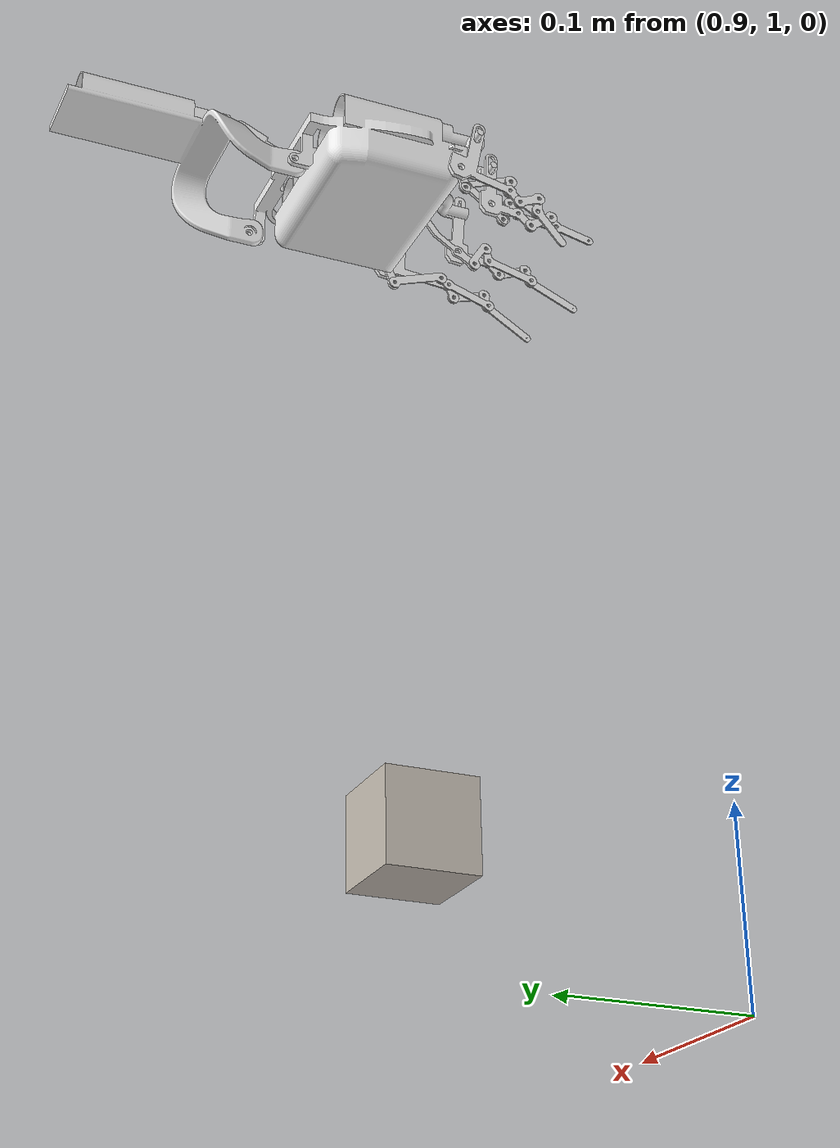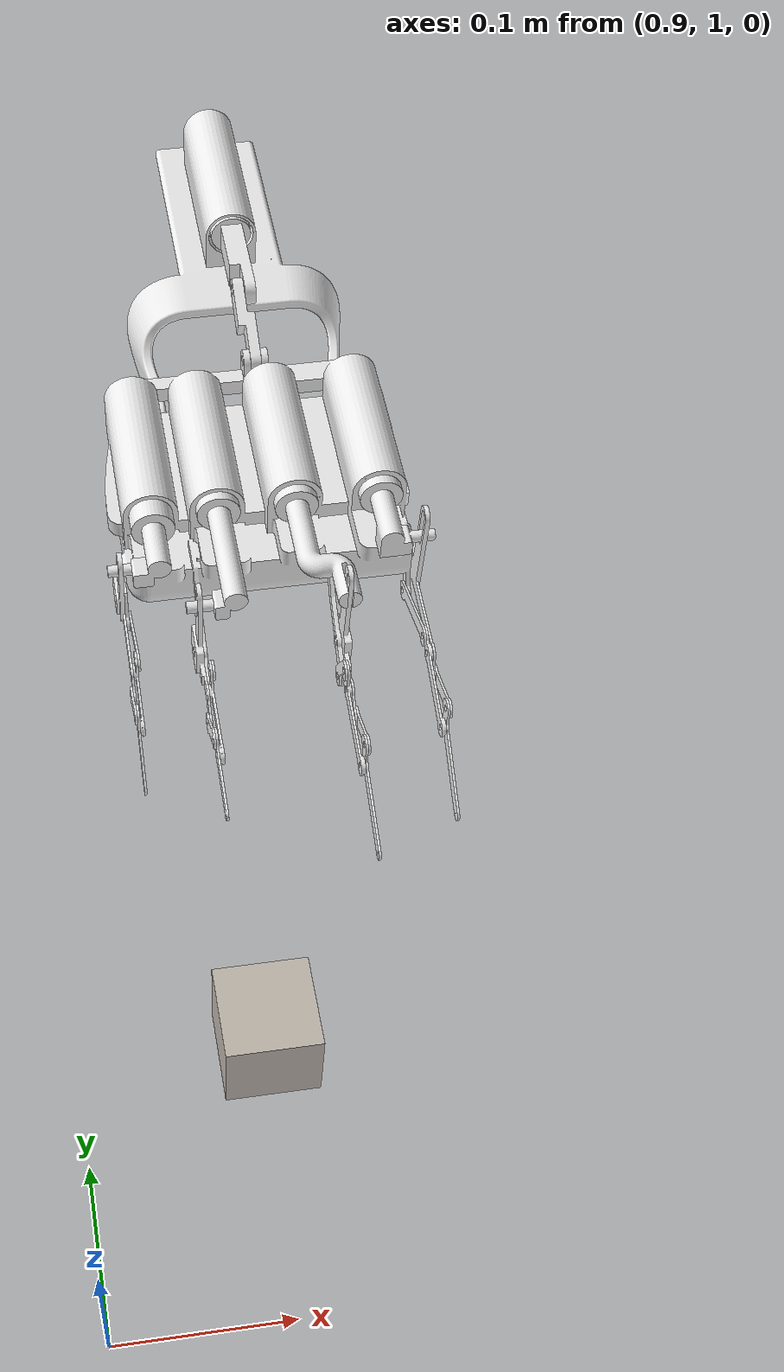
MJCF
<?xml version="1.0" encoding="utf-8"?>
<mujoco>
    <compiler angle="radian" coordinate="local" meshdir="../stls" texturedir="../textures"></compiler>
    <option timestep="0.001" iterations="20" apirate="200">
        <flag warmstart="enable"></flag>
    </option>

    <include file="shared.xml"></include>

    <asset>
        <include file="shared_asset.xml"></include>

        <texture name="texture:object" file="block.png" gridsize="3 4" gridlayout=".U..LFRB.D.."></texture>
        <texture name="texture:hidden" file="block_hidden.png" gridsize="3 4" gridlayout=".U..LFRB.D.."></texture>

        <material name="material:object" texture="texture:object" specular="1" shininess="0.3" reflectance="0"></material>
        <material name="material:hidden" texture="texture:hidden" specular="1" shininess="0.3" reflectance="0"></material>
        <material name="material:target" texture="texture:object" specular="1" shininess="0.3" reflectance="0" rgba="1 1 1 0.5"></material>
    </asset>

    <worldbody>
        <geom name="floor0" pos="1 1 0" size="1 1 1" type="plane" condim="3" material="floor_mat"></geom>
        <body name="floor0" pos="1 1 0"></body>

        <include file="glove.xml"></include>

        <body name="object" pos="1 1.12 0.1">
            <geom name="object" type="box" size="0.025 0.025 0.025" material="material:object" condim="4" density="567"></geom>
            <geom name="object_hidden" type="box" size="0.024 0.024 0.024" material="material:hidden" condim="4" contype="0" conaffinity="0" mass="0"></geom>
            <site name="object:center" pos="0 0 0" rgba="1 0 0 0" size="0.01 0.01 0.01"></site>
            <joint name="object:joint" type="free" damping="0.01"></joint>
        </body>
        <body name="target" pos="1 1.12 0.1">
            <geom name="target" type="box" size="0.025 0.025 0.025" material="material:target" condim="4" group="2" contype="0" conaffinity="0"></geom>
            <site name="target:center" pos="0 0 0" rgba="1 0 0 0" size="0.01 0.01 0.01"></site>
            <joint name="target:joint" type="free" damping="0.01"></joint>
        </body>

        <light directional="true" ambient="0.2 0.2 0.2" diffuse="0.8 0.8 0.8" specular="0.3 0.3 0.3" castshadow="false" pos="0 1 4" dir="0 0 -1" name="light0"></light>
    </worldbody>
</mujoco>

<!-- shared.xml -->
<mujoco>
    <size njmax="500" nconmax="100" nuser_jnt="1" nuser_site="1" nuser_tendon="1" nuser_sensor="1" nuser_actuator="16" nstack="600000"></size>

    <visual>
        <map fogstart="3" fogend="5" force="0.1"></map>
        <quality shadowsize="4096"></quality>
    </visual>

    <default>
        <default class="glove:asset_class">
            <geom friction="1 0.005 0.001" condim="3" margin="0.0005" contype="1" conaffinity="1"></geom>
            <joint limited="true" damping="0.1" armature="0.001" margin="0.01" frictionloss="0.001"></joint>
            <site size="0.005" rgba="0.4 0.9 0.4 1"></site>
            <general ctrllimited="true" forcelimited="false"></general>
        </default>
        <default class="glove:Touch">
            <site type="box" size="0.013 0.008 0.008" rgba="0.8 0.8 0.8 0.15" group="4"></site>
        </default>
        <default class="glove:Hand">
            <geom material="glove:MatColl" contype="1" conaffinity="0" group="4"></geom>
        </default>
        <default class="glove:Visual">
            <geom material="glove:MatViz" contype="0" conaffinity="0" group="1" type="mesh"></geom>
        </default>
        <default class="glove:free">
            <joint type="free" damping="0" armature="0" limited="false"></joint>
        </default>
    </default>

    <equality>
        <connect name="wrist" solimp="0.9 0.95 0.001 0.5 2" solref="0.004 1" body1="glove:wrist_base" body2="glove:palm" anchor="0.0325 -0.0422 0.04854"></connect>
        <connect name="index_proximal" solimp="0.9 0.95 0.001 0.5 2" solref="0.004 1" body1="glove:index_proximal_1" body2="glove:palm" anchor="0 0 0"></connect><!--solref="0 0.01"-->
        <connect name="index_distal" solimp="0.9 0.95 0.001 0.5 2" solref="0.004 1" body1="glove:index_middle_2" body2="glove:index_distal" anchor="0.03291 -0.00104 -0.00078"></connect><!--solref="0 0.01"-->
        <connect name="index_middle" solimp="0.9 0.95 0.001 0.5 2" solref="0.004 1" body1="glove:index_proximal_1" body2="glove:index_middle_2" anchor="0.04 0 0.00258"></connect><!--solref="0 0.01"-->
        <connect name="middle_proximal" solimp="0.9 0.95 0.001" solref="0.004 1" body1="glove:middle_proximal_1" body2="glove:palm" anchor="0 0 0"></connect><!--solref="0 0.01"-->
        <connect name="middle_distal" solimp="0.9 0.95 0.001" solref="0.004 1" body1="glove:middle_middle_2" body2="glove:middle_distal" anchor="0.03184 -0.00697 -0.00078"></connect><!--solref="0 0.01"-->
        <connect name="middle_middle" solimp="0.9 0.95 0.001 0.5 2" solref="0.004 1" body1="glove:middle_proximal_1" body2="glove:middle_middle_2" anchor="0.02 0 0"></connect><!--solref="0 0.01"-->
        <connect name="ring_proximal" solimp="0.9 0.95 0.001" solref="0.004 1" body1="glove:ring_proximal_1" body2="glove:palm" anchor="0 0 0"></connect><!--solref="0 0.01"-->
        <connect name="ring_distal" solimp="0.9 0.95 0.001" solref="0.004 1" body1="glove:ring_middle_2" body2="glove:ring_distal" anchor="0.0289 -0.00636 0.0016"></connect><!--solref="0 0.01"-->
        <connect name="ring_middle" solimp="0.9 0.95 0.001 0.5 2" solref="0.004 1" body1="glove:ring_proximal_1" body2="glove:ring_middle_2" anchor="0.0175 0 0"></connect><!--solref="0 0.01"-->
        <connect name="little_proximal" solimp="0.9 0.95 0.001" solref="0.004 1" body1="glove:little_proximal_1" body2="glove:palm" anchor="0 0 0"></connect><!--solref="0 0.01"-->
        <connect name="little_middle" solimp="0.9 0.95 0.001" solref="0.004 1" body1="glove:little_proximal_1" body2="glove:little_middle_2" anchor="0.031 0 0"></connect><!--solref="0 0.01"-->
        <connect name="little_distal" solimp="0.9 0.95 0.001" solref="0.004 1" body1="glove:little_middle_2" body2="glove:little_distal" anchor="0.02144 -0.00722 0.0016"></connect><!--solref="0 0.01"-->
    </equality>

    <actuator>
        <position name="glove:A_WRJ" class="glove:asset_class" user="2038" joint="glove:SEA_output_shaft_wrist_slide" ctrlrange="0 0.025" kp="2e8"></position>
        <position name="glove:A_IFJ" class="glove:asset_class" user="2036" joint="glove:SEA_output_shaft_index_slide" ctrlrange="0 0.019" kp="1e7"></position>
        <position name="glove:A_MFJ" class="glove:asset_class" user="2004" joint="glove:SEA_output_shaft_middle_slide" ctrlrange="0 0.019" kp="1e7"></position>
        <position name="glove:A_RFJ" class="glove:asset_class" user="2002" joint="glove:SEA_output_shaft_ring_slide" ctrlrange="0 0.019" kp="1e7"></position>
        <position name="glove:A_LFJ" class="glove:asset_class" user="2000" joint="glove:SEA_output_shaft_little_slide" ctrlrange="0 0.010" kp="1e7"></position>
    </actuator>
</mujoco>

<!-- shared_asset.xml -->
<mujoco>
    <texture type="skybox" builtin="gradient" rgb1="0.44 0.85 0.56" rgb2="0.46 0.87 0.58" width="32" height="32"></texture>

    <texture name="glove:texplane" type="2d" builtin="checker" rgb1="0.2 0.3 0.4" rgb2="0.1 0.15 0.2" width="512" height="512"></texture>
    <texture name="glove:texgeom" type="cube" builtin="flat" mark="cross" width="127" height="127" rgb1="0.3 0.6 0.5" rgb2="0.3 0.6 0.5" markrgb="0 0 0" random="0.01"></texture>

    <material name="glove:MatGnd" reflectance="0.5" texture="glove:texplane" texrepeat="1 1" texuniform="true"></material>
    <material name="glove:MatColl" specular="1" shininess="0.3" reflectance="0.5" rgba="0.4 0.5 0.6 1"></material>
    <material name="glove:MatViz" specular="0.75" shininess="0.1" reflectance="0.5" rgba="0.93 0.93 0.93 1"></material>
    <material name="glove:object" texture="glove:texgeom" texuniform="false"></material>
    <material name="floor_mat" specular="0" shininess="0.5" reflectance="0" rgba="0.2 0.2 0.2 0"></material>
    <!-- wrist -->
    <mesh name="glove:wrist_base" file="./wrist/wrist_base.STL"></mesh>
    <mesh name="glove:SEA_output_shaft_wrist" file="./wrist/SEA_output_shaft_wrist.STL"></mesh>
    <mesh name="glove:connect" file="./wrist/connect.STL"></mesh><!--scale="0.001 0.001 0.001"-->
    <!-- palm -->
    <mesh name="glove:palm" file="./palm/palm.STL"></mesh>
    <!-- index -->
    <mesh name="glove:SEA_output_shaft_index" file="./index/SEA_output_shaft_index.STL"></mesh>
    <mesh name="glove:index_proximal_1" file="./index/index_proximal_1.STL"></mesh>
    <mesh name="glove:index_middle_1" file="./index/index_middle_1.STL"></mesh>
    <mesh name="glove:index_distal" file="./index/index_distal.STL"></mesh>
    <mesh name="glove:index_proximal_2" file="./index/index_proximal_2.STL"></mesh>
    <mesh name="glove:index_middle_2" file="./index/index_middle_2.STL"></mesh>
    <!-- middle -->
    <mesh name="glove:SEA_output_shaft_middle" file="./middle/SEA_output_shaft_middle.STL"></mesh>
    <mesh name="glove:middle_proximal_1" file="./middle/middle_proximal_1.STL"></mesh>
    <mesh name="glove:middle_middle_1" file="./middle/middle_middle_1.STL"></mesh>
    <mesh name="glove:middle_distal" file="./middle/middle_distal.STL"></mesh>
    <mesh name="glove:middle_proximal_2" file="./middle/middle_proximal_2.STL"></mesh>
    <mesh name="glove:middle_middle_2" file="./middle/middle_middle_2.STL"></mesh>
    <!-- ring -->
    <mesh name="glove:SEA_output_shaft_ring"  file="./ring/SEA_output_shaft_ring.STL"></mesh>
    <mesh name="glove:ring_proximal_1" file="./ring/ring_proximal_1.STL"></mesh>
    <mesh name="glove:ring_middle_1" file="./ring/ring_middle_1.STL"></mesh>
    <mesh name="glove:ring_distal" file="./ring/ring_distal.STL"></mesh>
    <mesh name="glove:ring_proximal_2" file="./ring/ring_proximal_2.STL"></mesh>
    <mesh name="glove:ring_middle_2" file="./ring/ring_middle_2.STL"></mesh>
    <!-- little -->
    <mesh name="glove:SEA_output_shaft_little"  file="./little/SEA_output_shaft_little.STL"></mesh>
    <mesh name="glove:little_proximal_1" file="./little/little_proximal_1.STL"></mesh>
    <mesh name="glove:little_middle_1" file="./little/little_middle_1.STL"></mesh>
    <mesh name="glove:little_distal" file="./little/little_distal.STL"></mesh>
    <mesh name="glove:little_proximal_2" file="./little/little_proximal_2.STL"></mesh>
    <mesh name="glove:little_middle_2" file="./little/little_middle_2.STL"></mesh>
</mujoco>

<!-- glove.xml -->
<mujoco>
    <body childclass="glove:asset_class" name="glove:wrist_base" pos="1 1.25 0.50" euler="1.570796 0 0">
        <inertial pos="-0.0006546 -0.0275814 -0.0886159" xyaxes="0.0595825 -0.0224815 0.9979702 0.9980937 0.017458 -0.0591966" mass="528.4337494" diaginertia="0.6928335 0.9735148 1.3551796"></inertial>
        <geom class="glove:Hand" name="glove:C_wrist_base" type="mesh" mesh="glove:wrist_base"></geom>
        <geom class="glove:Visual" name="glove:V_wrist_base" mesh="glove:wrist_base"></geom>

        <body name="glove:SEA_output_shaft_wrist" pos="0 0 -0.032345">
            <inertial pos="0.0005023 -0.000102 0.0302733" xyaxes="0.0313318 0.0055263 0.9994938 0.0283861 -0.9995863 0.0046369" mass="8.1702512" diaginertia="0.0002338 0.0031607 0.0031854"></inertial>
            <joint name="glove:SEA_output_shaft_wrist_slide" type="slide" pos="0 0 0" axis="0 0 1" range="0 0.019" user="1122"></joint>
            <geom class="glove:Visual" name="glove:V_SEA_output_shaft_wrist" mesh="glove:SEA_output_shaft_wrist"></geom>
            <geom class="glove:Hand" name="glove:C_SEA_output_shaft_wrist" type="capsule" pos="0 0 0.03404" size="0.0085 0.02324"></geom>

            <body name="glove:connect" pos="0 -0.00088 0.06148" euler="0 -1.570796 -0.422719">
                <inertial pos="0.013879 0 0.000626" xyaxes="0.9926225 0 -0.1212456 0 -1 0" mass="2.9544633" diaginertia="0.0000224 0.0002468 0.0002569"></inertial>
                <joint name="glove:connect_hinge" type="hinge" pos="0 0 0" axis="0 0 1" range="-0.46 0" user="1103"></joint>
                <geom class="glove:Visual" name="glove:V_connect" mesh="glove:connect"></geom>
                <geom class="glove:Hand" name="glove:C_connect" type="capsule" fromto="0 0 0 0.028 0 0" size="0.00333"></geom>

                <body name="glove:palm" pos="0.028 0 -0.0007" euler="0 0 0.422719">
                    <inertial pos="0.047823 -0.004832 0.007715" xyaxes="0.026274 -0.026111 -0.999314 0.997282 -0.068153 0.028002" mass="147.045319" diaginertia="0.108345 0.162067 0.24691"></inertial>
                    <joint name="glove:palm_hinge" type="hinge" pos="0 0 0" axis="0 0 1" range="-2.07 0" user="1103"></joint>
                    <geom class="glove:Visual" name="glove:V_palm" mesh="glove:palm"></geom>
                    <geom class="glove:Hand" name="glove:C_palm" type="box" pos="0.048255 -0.019 0.00739" size="0.038137 0.013 0.05"></geom>
                    <!-- index finger
                    index 1 -->
                    <body name="glove:SEA_output_shaft_index" pos="0.0455 0.0035 -0.032034" euler="0 1.5707963 0">
                        <inertial pos="0.00196821 -0.00107437 0.02830557" xyaxes="-0.143083 0.066871 -0.987446 -0.914234 0.373219 0.157749" mass="7.970186" diaginertia="0.000315 0.002395 0.002501"></inertial>
                        <joint name="glove:SEA_output_shaft_index_slide" type="slide" pos="0 0 0" axis="0 0 1" range="0 0.019" user="1103"></joint>
                        <geom class="glove:Visual" name="glove:V_SEA_output_shaft_index" mesh="glove:SEA_output_shaft_index"></geom>
                        <geom class="glove:Hand" name="glove:C_SEA_output_shaft_index" type="mesh" mesh="glove:SEA_output_shaft_index" pos="0 0 0"></geom>
                        <body name="glove:index_connect" pos="0.01135 -0.0047 0.04679">
                            <joint name="glove:index_connect_hinge" type="hinge" pos="0 0 0" axis="1 0 0" range="0 0.626224136" user="1103"></joint>
                            <geom class="glove:Hand" name="glove:C_index_connect" type="cylinder" fromto="-0.00435 0 0 0.00435 0 0" size="0.002"></geom>
                            <body name="glove:index_proximal_1" pos="0.00193 -0.023225 -0.00984" euler="0 -1.5707963 -0.0780162">
                                <inertial pos="0.008629 0.005688 0.001628" xyaxes="0.963995 -0.265119 0.020633 0.264836 0.96417 0.015453" mass="2.4078" diaginertia="0.000239 0.000386 0.000623"></inertial>
                                <joint name="glove:index_proximal_1_slide" type="slide" pos="0 0 0" axis="0 1 0" range="-0.012 0" user="1103"></joint>
                                <geom class="glove:Visual" name="glove:V_index_proximal_1" mesh="glove:index_proximal_1"></geom>
                                <geom class="glove:Hand" name="glove:C_index_proximal_1" type="mesh" mesh="glove:index_proximal_1" pos="0 0 0"></geom>

                                <body name="glove:index_middle_1" pos="0.044224 -0.006829 0.00176" euler="0 0 0.388161219">
                                    <inertial pos="0.010585 0 -0.00041" xyaxes="1 0 0 0 -1 0" mass="0.312754" diaginertia="0.000001 0.00002 0.000021"></inertial>
                                    <joint name="glove:index_middle_1_hinge" type="hinge" pos="0 0 -0.00041" axis="0 0 1" range="-1.3208652 0" user="1103"></joint>
                                    <geom class="glove:Visual" name="glove:V_index_middle_1" mesh="glove:index_middle_1"></geom>
                                    <geom class="glove:Hand" name="glove:C_index_middle_1" type="box" pos="0.010585 0 -0.00041" size="0.010585 0.0035 0.00041"></geom>

                                    <body name="glove:index_distal" pos="0.02117 0 0" euler="0 0 -0.86446156">
                                        <inertial pos="0.0161292 -0.0046484 0.00041" xyaxes="0.9938448 -0.1107818 0 0.1107818 0.9938448 0" mass="0.502947" diaginertia="0.000003 0.000072 0.000075"></inertial>
                                        <joint name="glove:index_distal_hinge" type="hinge" pos="0 0 0.00041" axis="0 0 1" range="-0.34  0" user="1103"></joint>
                                        <geom class="glove:Visual" name="glove:V_index_distal" mesh="glove:index_distal"></geom>
                                        <geom class="glove:Hand" name="glove:C_index_distal" type="mesh" mesh="glove:index_distal" pos="0 0 0"></geom>
                                        <site class="glove:Touch" name="glove:Tch_Iftip" pos="0.0256 -0.0056 0.008"></site>
                                    </body>
                                </body>
                            </body>
                        </body>
                    </body>
                    <!-- index 2 -->
                    <body name="glove:index_proximal_2" pos="0.086915 -0.035477 -0.041174" euler="0 0 0.343306258">
                        <inertial pos="0.015995 0.0007013 0.00041" xyaxes="1 0 0 0 -1 0" mass="0.437909" diaginertia="0.000001 0.000055 0.000056"></inertial>
                        <joint name="glove:index_proximal_2_hinge" type="hinge" pos="0 0 0" axis="0 0 1" range="-0.6393141 0" user="1103"></joint>
                        <geom class="glove:Visual" name="glove:V_index_proximal_2" mesh="glove:index_proximal_2"></geom>
                        <geom class="glove:Hand" name="glove:C_index_proximal_2" type="box" pos="0.016 0 0.00041" size="0.016 0.0035 0.00041"></geom>

                        <body name="glove:index_middle_2" pos="0.03199 0 -0.00082" euler="0 0 -0.659908979">
                            <inertial pos="0.0168828 -0.0009065 0.0002659" xyaxes="0.9998547 -0.01685 -0.0025635 0.0168628 0.999845 0.0050694" mass="0.546186" diaginertia="0.000002 0.000078 0.000079"></inertial>
                            <joint name="glove:index_middle_2_hinge" type="hinge" pos="0 0 0.00041" axis="0 0 1" range="-1 0" user="1103"></joint>
                            <geom class="glove:Visual" name="glove:V_index_middle_2" mesh="glove:index_middle_2"></geom>
                            <geom class="glove:Hand" name="glove:C_index_middle_2" type="box" pos="0.0164625 0 0.00041" size="0.0164625 0.0035 0.00041"></geom>
                        </body>
                    </body>

                    <!--middle finger-->
                    <!-- middle 1 -->
                    <body name="glove:SEA_output_shaft_middle" pos="0.0455 0.0035 -0.002536" euler="0 1.5707963 0">
                        <inertial pos="0.00127 -0.000098 0.029158" xyaxes="0.109701 0.006257 0.993945 0.993527 -0.030374 -0.109463" mass="7.124016" diaginertia="0.000227 0.003249 0.003292"></inertial>
                        <joint name="glove:SEA_output_shaft_middle_slide" type="slide" pos="0 0 0" axis="0 0 1" range="0 0.019" user="1103"></joint>
                        <geom class="glove:Visual" name="glove:V_SEA_output_shaft_middle" mesh="glove:SEA_output_shaft_middle"></geom>
                        <geom class="glove:Hand" name="glove:C_SEA_output_shaft_middle" type="mesh" mesh="glove:SEA_output_shaft_middle" pos="0 0 0"></geom>

                        <body name="glove:middle_connect" pos="0.0106 0 0.07098">
                            <joint name="glove:middle_connect_hinge" type="hinge" pos="0 0 0" axis="1 0 0" range="0 0.542" user="1103"></joint>
                            <geom class="glove:Hand" name="glove:C_middle_connect" type="cylinder" fromto="-0.009 0 0 0.009 0 0" size="0.001"></geom>

                            <body name="glove:middle_proximal_1" pos="-0.0008 -0.029125 -0.00232" euler="0 -1.5707963 -0.0794125">
                                <inertial pos="0.002633 0.0085329 -0.000994" xyaxes="-0.2512341 0.9679056 0.0063425 -0.9673889 -0.250871 -0.034950" mass="2.370551" diaginertia="0.000114 0.000395 0.000508"></inertial>
                                <joint name="glove:middle_proximal_1_slide" type="slide" pos="0 0 0" axis="0 1 0" range="-0.008 0" user="1103"></joint>
                                <geom class="glove:Visual" name="glove:V_middle_proximal_1" mesh="glove:middle_proximal_1"></geom>
                                <geom class="glove:Hand" name="glove:C_middle_proximal_1" type="mesh" mesh="glove:middle_proximal_1" pos="0 0 0"></geom>

                                <body name="glove:middle_middle_1" pos="0.027363 -0.00579 -0.00082" euler="0 0 0.47263515">
                                    <inertial pos="0.009425 0 -0.00041" xyaxes="-1 0 0 0 1 0" mass="0.287071" diaginertia="0.000001 0.000016 0.000016"></inertial>
                                    <joint name="glove:middle_middle_1_hinge" type="hinge" pos="0 0 0" axis="0 0 1" range="-1.73 0" user="1103"></joint>
                                    <geom class="glove:Visual" name="glove:V_middle_middle_1" mesh="glove:middle_middle_1"></geom>
                                    <geom class="glove:Hand" name="glove:C_middle_middle_1" type="box" pos="0.009425 0 -0.00041" size="0.009425 0.0035 0.00041"></geom>

                                    <body name="glove:middle_distal" pos="0.01885 0 0" euler="0 0 -0.79936">
                                        <inertial pos="0.0161292 -0.004648 0.00041" xyaxes="0.9938448 -0.1107828 0 0.1107818 0.9938445 0" mass="0.483259" diaginertia="0.000003 0.000069 0.000072"></inertial>
                                        <joint name="glove:middle_distal_1_hinge" type="hinge" pos="0 0 0" axis="0 0 1" range="0 0.166" user="1103"></joint>
                                        <geom class="glove:Visual" name="glove:V_middle_distal" mesh="glove:middle_distal"></geom>
                                        <geom class="glove:Hand" name="glove:C_middle_distal" type="mesh" mesh="glove:middle_distal" pos="0 0 0"></geom>
                                        <site class="glove:Touch" name="glove:Tch_Mftip" pos="0.0256 -0.0056 0.008"></site>
                                    </body>
                                </body>
                            </body>
                        </body>
                    </body>

                    <!-- middle 2 -->
                    <body name="glove:middle_proximal_2" pos="0.124204 -0.032173 -0.010736" euler="0 0 1.018749">
                        <inertial pos="0.00742 0.00059 0.00041" xyaxes="-1 0 0 0 -1 0" mass="0.229772" diaginertia="0.000001 0.000009 0.00001"></inertial>
                        <joint name="glove:middle_proximal_2_hinge" type="hinge" pos="0 0 0" axis="0 0 1" range="-1.31 0" user="1103"></joint>
                        <geom class="glove:Visual" name="glove:V_middle_proximal_2" mesh="glove:middle_proximal_2"></geom>
                        <geom class="glove:Hand" name="glove:C_middle_proximal_2" type="box" pos="0.00742 0 0.00041" size="0.01 0.0035 0.00041"></geom>

                        <body name="glove:middle_middle_2" pos="0.014863 0 -0.00082" euler="0 0 -1.2534955">
                            <inertial pos="0.014988 -0.0059671 0.000275" xyaxes="0.99403 -0.109079 -0.002612 0.109106 0.993923 0.014571" mass="0.576615" diaginertia="0.000004 0.000083 0.000087"></inertial>
                            <joint name="glove:middle_middle_2_hinge" type="hinge" pos="0 0 0" axis="0 0 1" range="-0.432 0" user="1103"></joint>
                            <geom class="glove:Visual" name="glove:V_middle_middle_2" mesh="glove:middle_middle_2"></geom>
                            <geom class="glove:Hand" name="glove:C_middle_middle_2" type="mesh" mesh="glove:middle_middle_2" pos="0 0 0"></geom>
                        </body>
                    </body>

                    <!--ring finger-->
                    <!-- ring 1 -->
                    <body name="glove:SEA_output_shaft_ring" pos="0.0455 0.0035 0.024464" euler="0 1.5707963 0">
                        <inertial pos="-0.001658 -0.000979 0.038413" xyaxes="0.083943 0.040268 -0.995657 -0.921735 -0.376519 -0.092939" mass="8.679816" diaginertia="0.000291 0.005417 0.005521"></inertial>
                        <joint name="glove:SEA_output_shaft_ring_slide" type="slide" pos="0 0 0" axis="0 0 1" range="0 0.019" user="1103"></joint>
                        <geom class="glove:Visual" name="glove:V_SEA_output_shaft_ring" mesh="glove:SEA_output_shaft_ring"></geom>
                        <geom class="glove:Hand" name="glove:C_SEA_output_shaft_ring" type="mesh" mesh="glove:SEA_output_shaft_ring" pos="0 0 0"></geom>

                        <body name="glove:ring_connect" pos="-0.01155 -0.0047 0.06779">
                            <joint name="glove:ring_connect_hinge" type="hinge" pos="0 0 0" axis="1 0 0" range="0 0.635" user="1103"></joint>
                            <geom class="glove:Hand" name="glove:C_ring_connect" type="cylinder" fromto="-0.0045 0 0 0.0045 0 0" size="0.002"></geom>

                            <body name="glove:ring_proximal_1" pos="0.00045 -0.024229 -0.00099" euler="0 -1.5707963 -0.0408407">
                                <inertial pos="0.002609 0.005714 0.001025" xyaxes="-0.358013 0.933709 -0.00368 -0.933063 -0.357612 0.038827" mass="2.073693" diaginertia="0.000092 0.00023 0.00032"></inertial>
                                <joint name="glove:ring_proximal_1_slide" type="slide" pos="0 0 0" axis="0 1 0" range="-0.00065 0" user="1103"></joint>
                                <geom class="glove:Visual" name="glove:V_ring_proximal_1" mesh="glove:ring_proximal_1"></geom>
                                <geom class="glove:Hand" name="glove:C_ring_proximal_1" type="mesh" mesh="glove:ring_proximal_1" pos="0 0 0"></geom>

                                <body name="glove:ring_middle_1" pos="0.025164 -0.006377 0.00082" euler="0 0 0.648215">
                                    <inertial pos="0.00804 0 0.00041" xyaxes="1 0 0 0 1 0" mass="0.256407" diaginertia="0.000001 0.000011 0.000012"></inertial>
                                    <joint name="glove:ring_middle_1_hinge" type="hinge" pos="0 0 0" axis="0 0 1" range="-1.85 0" user="1103"></joint>
                                    <geom class="glove:Visual" name="glove:V_ring_middle_1" mesh="glove:ring_middle_1"></geom>
                                    <geom class="glove:Hand" name="glove:C_ring_middle_1" type="box" pos="0.00805 0 0.00041" size="0.00805 0.0035 0.00041"></geom>

                                    <body name="glove:ring_distal" pos="0.0161 0 -0.00082" euler="0 0 -0.820305">
                                        <inertial pos="0.0111021 -0.0033985 0.00041" xyaxes="0.9914145 -0.1307563 0 0.1307563 0.9914145 0" mass="0.374315" diaginertia="0.000002 0.000029 0.000031"></inertial>
                                        <joint name="glove:ring_distal_1_hinge" type="hinge" pos="0 0 0" axis="0 0 1" range="-0.12 0" user="1103"></joint>
                                        <geom class="glove:Visual" name="glove:V_ring_distal" mesh="glove:ring_distal"></geom>
                                        <geom class="glove:Hand" name="glove:C_ring_distal" type="mesh" mesh="glove:ring_distal" pos="0 0 0"></geom>
                                        <site class="glove:Touch" name="glove:Tch_Rftip" pos="0.02426 -0.00426 -0.008"></site>
                                    </body>
                                </body>
                            </body>
                        </body>
                    </body>

                    <!-- ring 2 -->
                    <body name="glove:ring_proximal_2" pos="0.120953 -0.031551 0.033104" euler="0 0 1.20829142">
                        <inertial pos="0.006525 0.0004838 0.00041" xyaxes="-1 0 0 0 1 0" mass="0.220804" diaginertia="0.000001 0.000007 0.000008"></inertial>
                        <joint name="glove:ring_proximal_2_hinge" type="hinge" pos="0 0 0" axis="0 0 1" range="-1.38 0" user="1103"></joint>
                        <geom class="glove:Visual" name="glove:V_ring_proximal_2" mesh="glove:ring_proximal_2"></geom>
                        <geom class="glove:Hand" name="glove:C_ring_proximal_2" type="box" pos="0.006538 0 0.00041" size="0.006538 0.0035 0.00041"></geom>

                        <body name="glove:ring_middle_2" pos="0.01305 0 0.00082" euler="0 0 -1.3137">
                            <inertial pos="0.0141016 -0.0052297 0.0005693" xyaxes="0.9916009 -0.1292814 0.0037502 0.1293319 0.9913782 -0.0210348" mass="0.494241" diaginertia="0.000003 0.000061 0.000064"></inertial>
                            <joint name="glove:ring_middle_2_hinge" type="hinge" pos="0 0 0" axis="0 0 1" range="-0.45 0" user="1103"></joint>
                            <geom class="glove:Visual" name="glove:V_ring_middle_2" mesh="glove:ring_middle_2"></geom>
                            <geom class="glove:Hand" name="glove:C_ring_middle_2" type="mesh" mesh="glove:ring_middle_2" pos="0 0 0"></geom>
                        </body>
                    </body>

                    <!-- little finger
                    little 1 -->
                    <body name="glove:SEA_output_shaft_little" pos="0.0495 0.0035 0.047464" euler="0 1.5707963 0">
                        <inertial pos="-0.002448 -0.001344 0.028692" xyaxes="0.156678 0.070347 -0.985141 -0.924598 -0.340233 -0.171345" mass="7.220256" diaginertia="0.000287 0.002151 0.002272"></inertial>
                        <joint name="glove:SEA_output_shaft_little_slide" type="slide" pos="0 0 0" axis="0 0 1" range="0 0.0151" user="1103"></joint>
                        <geom class="glove:Visual" name="glove:V_SEA_output_shaft_little" mesh="glove:SEA_output_shaft_little"></geom>
                        <geom class="glove:Hand" name="glove:C_SEA_output_shaft_little" type="mesh" mesh="glove:SEA_output_shaft_little" pos="0 0 0"></geom>

                        <body name="glove:little_connect" pos="-0.01305 -0.0047 0.04399">
                            <joint name="glove:little_connect_hinge" type="hinge" pos="0 0 0" axis="1 0 0" range="0 0.316" user="1103"></joint>
                            <geom class="glove:Hand" name="glove:C_little_connect" type="cylinder" fromto="-0.0045 0 0 0.0045 0 0" size="0.002"></geom>

                            <body name="glove:little_proximal_1" pos="0.00095 -0.02423 -0.01109" euler="0 -1.5707963 -0.202109">
                                <inertial pos="0.0064485 0.005612 0.0009768" xyaxes="0.8653759 -0.5007728 -0.0187386 0.5003301 0.865505 -0.0238941" mass="2.228222" diaginertia="0.000193 0.000254 0.000445"></inertial>
                                <joint name="glove:little_proximal_1_slide" type="slide" pos="0 0 0" axis="0 1 0" range="-0.00492 0" user="1103"></joint>
                                <geom class="glove:Visual" name="glove:V_little_proximal_1" mesh="glove:little_proximal_1"></geom>
                                <geom class="glove:Hand" name="glove:C_little_proximal_1" type="mesh" mesh="glove:little_proximal_1" pos="0 0 0"></geom>

                                <body name="glove:little_middle_1" pos="0.037528 -0.005475 0.00082" euler="0 0 0.6265732">
                                    <inertial pos="0.006555 0 0.00041" xyaxes="1 0 0 0 1 0" mass="0.223529" diaginertia="0.000001 0.000007 0.000008"></inertial>
                                    <joint name="glove:little_middle_1_hinge" type="hinge" pos="0 0 0" axis="0 0 1" range="-1.1 0" user="1103"></joint>
                                    <geom class="glove:Visual" name="glove:V_little_middle_1" mesh="glove:little_middle_1"></geom>
                                    <geom class="glove:Hand" name="glove:C_little_middle_1" type="box" pos="0.006555 0 0.00041" size="0.006555 0.0035 0.00041"></geom>

                                    <body name="glove:little_distal" pos="0.013136 0 -0.00082" euler="0 0 -1.30515721">
                                        <inertial pos="0.0124181 -0.0045993 0.00041" xyaxes="0.9855276 -0.169515 0 0.169515 0.9855276 0" mass="0.399541" diaginertia="0.000002 0.000038 0.00004"></inertial>
                                        <joint name="glove:little_distal_hinge" type="hinge" pos="0 0 0" axis="0 0 1" range="-0.08 0" user="1103"></joint>
                                        <geom class="glove:Visual" name="glove:V_little_distal" mesh="glove:little_distal"></geom>
                                        <geom class="glove:Hand" name="glove:C_little_distal" type="mesh" mesh="glove:little_distal" pos="0 0 0"></geom>
                                        <site class="glove:Touch" name="glove:Tch_Lftip" pos="0.02584 -0.00584 -0.008"></site>
                                    </body>
                                </body>
                            </body>
                        </body>
                    </body>

                    <!-- little 2 -->
                    <body name="glove:little_proximal_2" pos="0.086467 -0.035672 0.057964" euler="0 0 0.392">
                        <inertial pos="0.01504 0.0010161 -0.00041" xyaxes="-1 0 0 0 1 0" mass="0.339161" diaginertia="0.0000011 0.000044 0.000045"></inertial>
                        <joint name="glove:little_proximal_2_hinge" type="hinge" pos="0 0 0" axis="0 0 1" range="-0.45 0" user="1103"></joint>
                        <geom class="glove:Visual" name="glove:V_little_proximal_2" mesh="glove:little_proximal_2"></geom>
                        <geom class="glove:Hand" name="glove:C_little_proximal_2" type="box" pos="0.01504 0 -0.00041" size="0.01504 0.0035 0.00041"></geom>

                        <body name="glove:little_middle_2" pos="0.03008 0 0" euler="0 0 -0.915425">
                            <inertial pos="0.0097546 -0.0059841 0.0005756" xyaxes="0.9842724 -0.176582 0.0051581 0.1766476 0.9841053 -0.018234" mass="0.475566" diaginertia="0.000004 0.000036 0.00004"></inertial>
                            <joint name="glove:little_middle_2" type="hinge" pos="0 0 0" axis="0 0 1" range="-0.49 0" user="1103"></joint>
                            <geom class="glove:Visual" name="glove:V_little_middle_2" mesh="glove:little_middle_2"></geom>
                            <geom class="glove:Hand" name="glove:C_little_middle_2" type="mesh" mesh="glove:little_middle_2" pos="0 0 0"></geom>
                        </body>
                    </body>
                </body>
            </body>
        </body>
    </body>
</mujoco>
